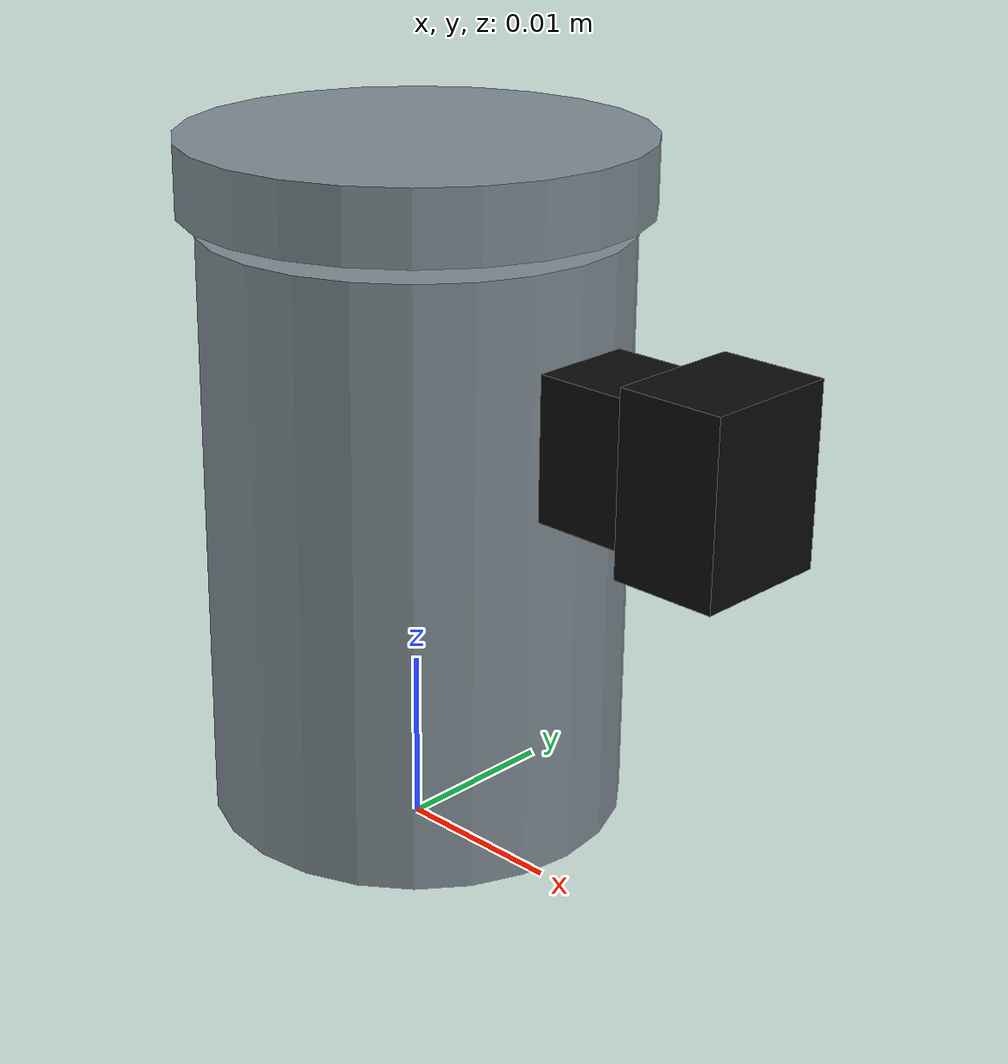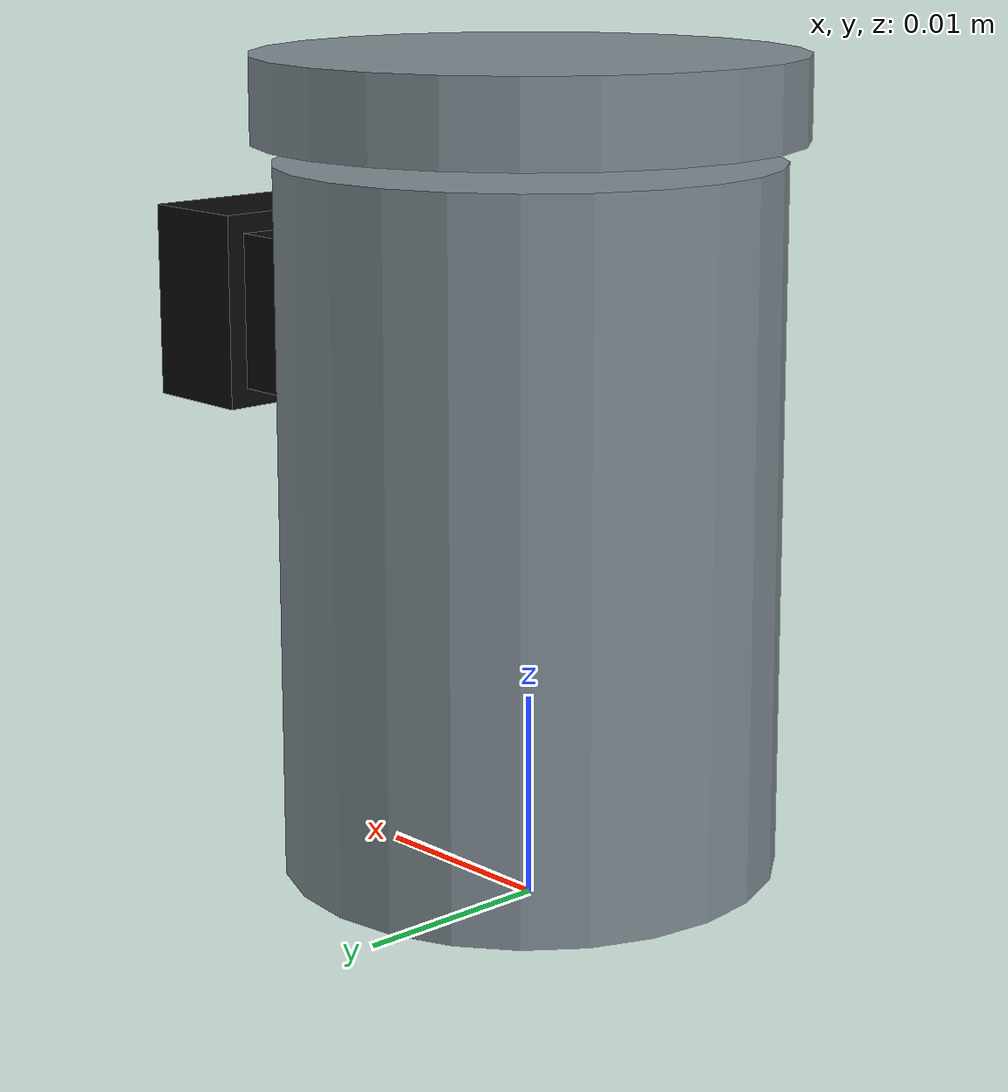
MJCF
<mujoco model="custom_stove_mini_saucepan">
  <asset>
    <material name="saucepan_metal" rgba="0.50 0.55 0.58 1"/>
    <material name="saucepan_dark" rgba="0.04 0.04 0.04 1"/>
  </asset>
  <worldbody>
    <body>
      <body name="object">
        <geom name="saucepan_col" type="cylinder" size="0.012 0.021" pos="0 0 0.021" rgba="0 0 0 0" density="350" group="0" contype="1" conaffinity="1"/>
        <geom name="saucepan_body" type="cylinder" size="0.012 0.017" pos="0 0 0.019" material="saucepan_metal" group="1" contype="0" conaffinity="0"/>
        <geom name="saucepan_rim" type="cylinder" size="0.013 0.002" pos="0 0 0.039" material="saucepan_metal" group="1" contype="0" conaffinity="0"/>
        <geom name="short_handle" type="box" size="0.004 0.003 0.004" pos="0.016 0 0.027" material="saucepan_dark" group="1" contype="0" conaffinity="0"/>
        <geom name="short_handle_cap" type="box" size="0.003 0.004 0.005" pos="0.021 0 0.027" material="saucepan_dark" group="1" contype="0" conaffinity="0"/>
        <geom name="reg_bbox" type="box" size="0.017 0.014 0.025" pos="0.004 0 0.025" rgba="0 0 0 0" group="3" contype="0" conaffinity="0"/>
      </body>
      <site name="bottom_site" pos="0 0 0" size="0.005" rgba="0 0 0 0"/>
      <site name="top_site" pos="0 0 0.050" size="0.005" rgba="0 0 0 0"/>
      <site name="horizontal_radius_site" pos="0.020 0 0.025" size="0.005" rgba="0 0 0 0"/>
    </body>
  </worldbody>
</mujoco>
